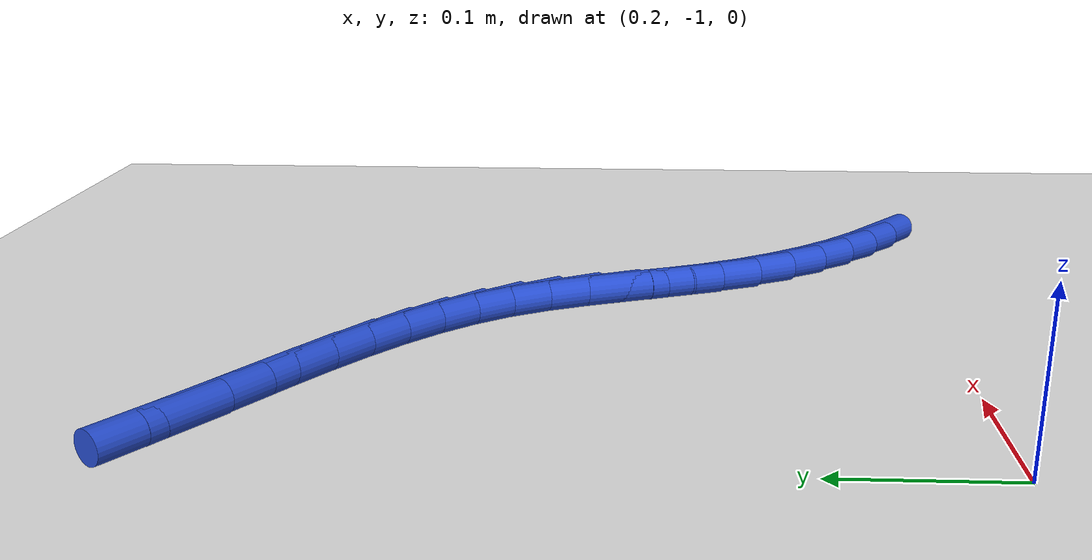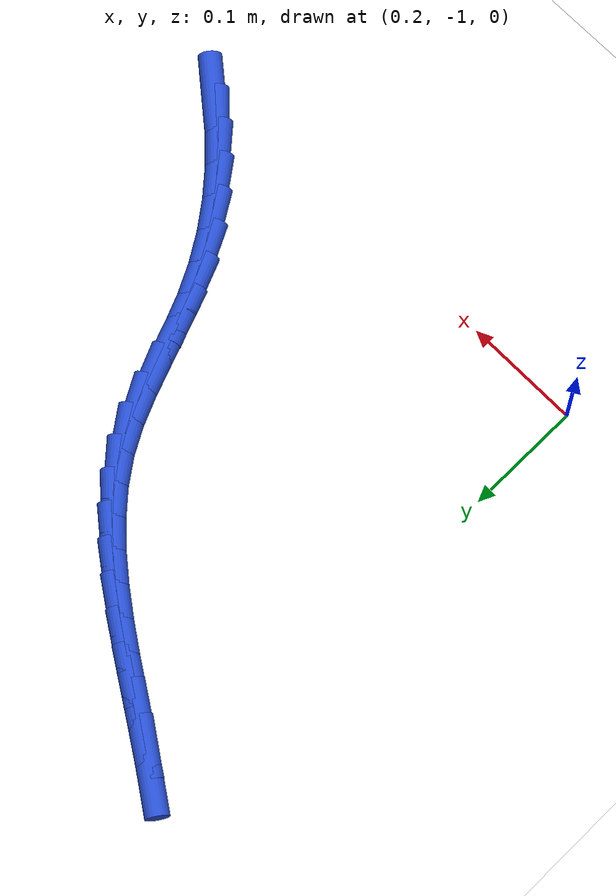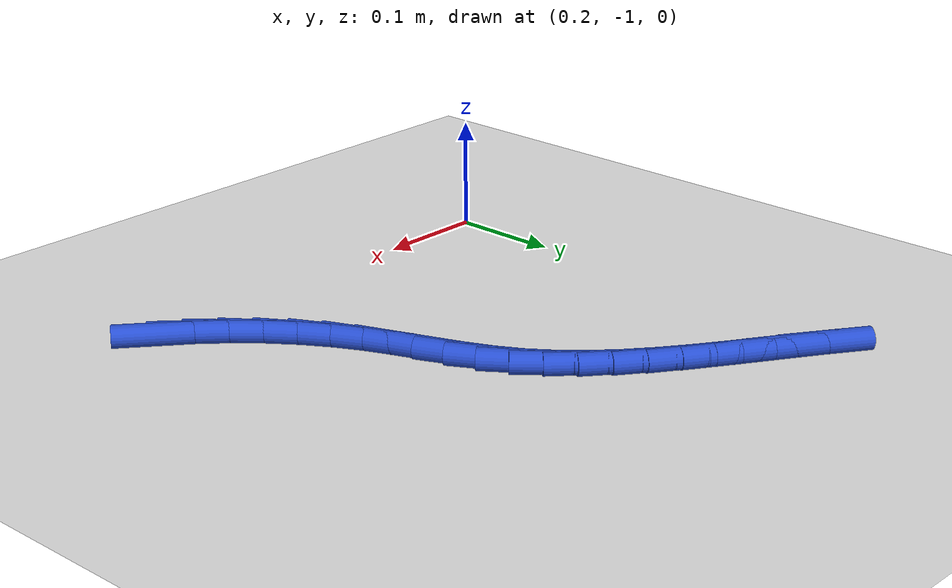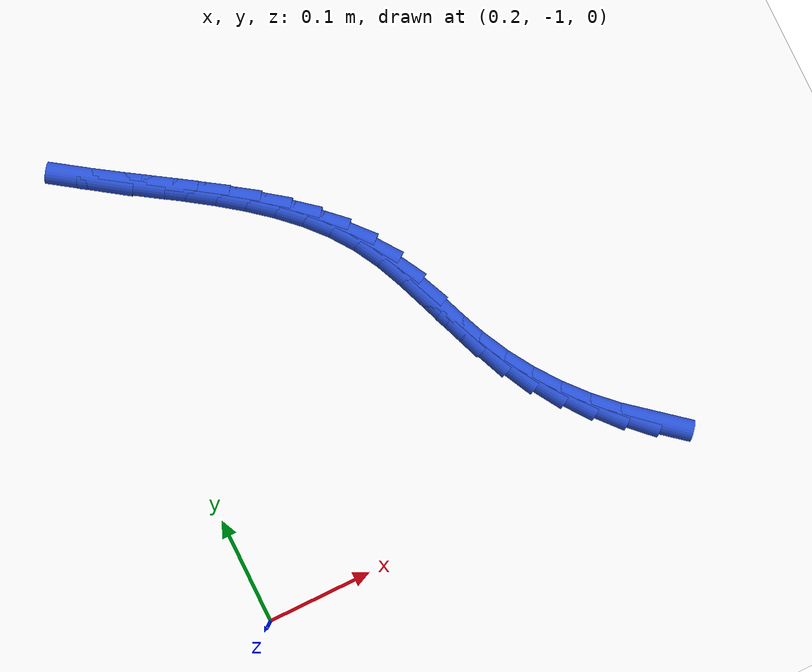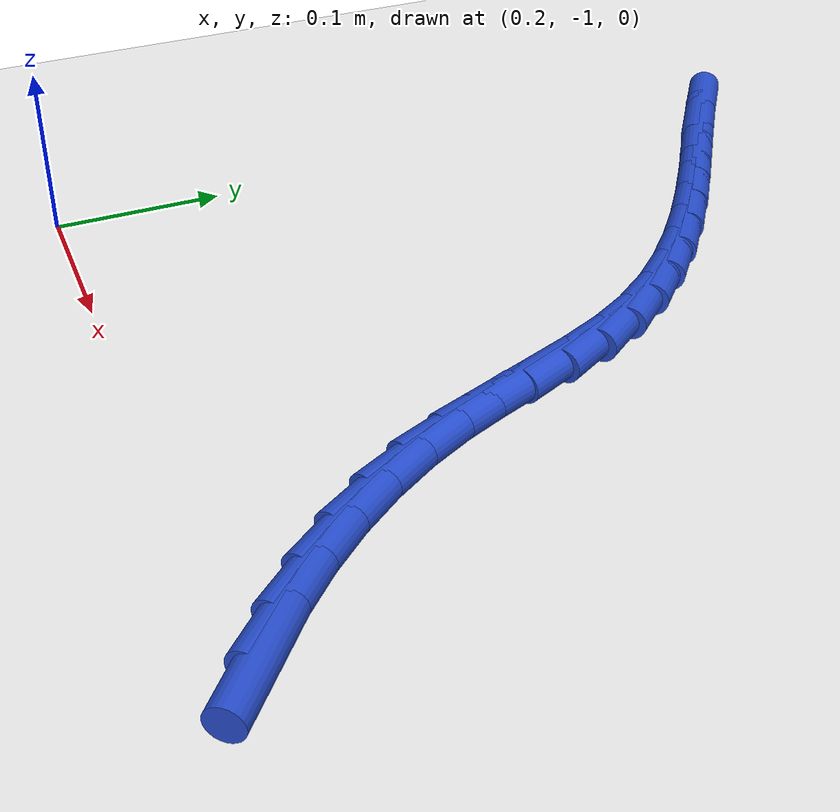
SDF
<sdf version="1.6">
 <world name="default">
  <model name="ground_plane">
   <static>1</static>
   <link name="link">
    <collision name="collision">
     <geometry><plane><normal>0 0 1</normal><size>100 100</size></plane></geometry>
     <surface><friction><ode><mu>100</mu><mu2>50</mu2></ode></friction></surface>
    </collision>
    <visual name="visual">
     <cast_shadows>0</cast_shadows>
     <geometry><plane><normal>0 0 1</normal><size>100 100</size></plane></geometry>
     <material>
      <script><uri>file://media/materials/scripts/gazebo.material</uri><name>Gazebo/WhiteGlow</name></script>
     </material>
    </visual>
   </link>
  </model>
  <model name="line">
   <link name="link_207">
    <pose>0.5857591074562696 -0.9875259805124075 0.01 0 1.57 -0.687936018560991</pose>
    <collision name="collision">
     <geometry><cylinder><radius>0.01</radius><length>0.08</length></cylinder></geometry>
    </collision>
    <visual name="visual">
     <material>
      <script><name>Gazebo/Blue</name><uri>file://media/materials/scripts/gazebo.material</uri></script>
     </material>
     <geometry><cylinder><radius>0.01</radius><length>0.08</length></cylinder></geometry>
    </visual>
   </link>
   <link name="link_208">
    <pose>0.5634534072632562 -0.969193548352954 0.01 0 1.57 -0.7690831950803583</pose>
    <collision name="collision">
     <geometry><cylinder><radius>0.01</radius><length>0.08</length></cylinder></geometry>
    </collision>
    <visual name="visual">
     <material>
      <script><name>Gazebo/Blue</name><uri>file://media/materials/scripts/gazebo.material</uri></script>
     </material>
     <geometry><cylinder><radius>0.01</radius><length>0.08</length></cylinder></geometry>
    </visual>
   </link>
   <link name="link_209">
    <pose>0.5426179669160879 -0.9490271116892757 0.01 0 1.57 -0.8492990741229081</pose>
    <collision name="collision">
     <geometry><cylinder><radius>0.01</radius><length>0.08</length></cylinder></geometry>
    </collision>
    <visual name="visual">
     <material>
      <script><name>Gazebo/Blue</name><uri>file://media/materials/scripts/gazebo.material</uri></script>
     </material>
     <geometry><cylinder><radius>0.01</radius><length>0.08</length></cylinder></geometry>
    </visual>
   </link>
   <link name="link_210">
    <pose>0.5234435801100519 -0.927231110503655 0.01 0 1.57 -0.929871763428374</pose>
    <collision name="collision">
     <geometry><cylinder><radius>0.01</radius><length>0.08</length></cylinder></geometry>
    </collision>
    <visual name="visual">
     <material>
      <script><name>Gazebo/Blue</name><uri>file://media/materials/scripts/gazebo.material</uri></script>
     </material>
     <geometry><cylinder><radius>0.01</radius><length>0.08</length></cylinder></geometry>
    </visual>
   </link>
   <link name="link_211">
    <pose>0.5061210405404372 -0.9040099847783777 0.01 0 1.57 -1.0120861842190325</pose>
    <collision name="collision">
     <geometry><cylinder><radius>0.01</radius><length>0.08</length></cylinder></geometry>
    </collision>
    <visual name="visual">
     <material>
      <script><name>Gazebo/Blue</name><uri>file://media/materials/scripts/gazebo.material</uri></script>
     </material>
     <geometry><cylinder><radius>0.01</radius><length>0.08</length></cylinder></geometry>
    </visual>
   </link>
   <link name="link_212">
    <pose>0.49084114190253225 -0.8795681744957281 0.01 0 1.57 -1.0970515512770902</pose>
    <collision name="collision">
     <geometry><cylinder><radius>0.01</radius><length>0.08</length></cylinder></geometry>
    </collision>
    <visual name="visual">
     <material>
      <script><name>Gazebo/Blue</name><uri>file://media/materials/scripts/gazebo.material</uri></script>
     </material>
     <geometry><cylinder><radius>0.01</radius><length>0.08</length></cylinder></geometry>
    </visual>
   </link>
   <link name="link_213">
    <pose>0.47778988544620415 -0.8541115439185473 0.01 0 1.57 -1.1708049866317725</pose>
    <collision name="collision">
     <geometry><cylinder><radius>0.01</radius><length>0.08</length></cylinder></geometry>
    </collision>
    <visual name="visual">
     <material>
      <script><name>Gazebo/Blue</name><uri>file://media/materials/scripts/gazebo.material</uri></script>
     </material>
     <geometry><cylinder><radius>0.01</radius><length>0.08</length></cylinder></geometry>
    </visual>
   </link>
   <link name="link_214">
    <pose>0.4667374846013331 -0.8279695264806982 0.01 0 1.57 -1.2067089240962305</pose>
    <collision name="collision">
     <geometry><cylinder><radius>0.01</radius><length>0.08</length></cylinder></geometry>
    </collision>
    <visual name="visual">
     <material>
      <script><name>Gazebo/Blue</name><uri>file://media/materials/scripts/gazebo.material</uri></script>
     </material>
     <geometry><cylinder><radius>0.01</radius><length>0.08</length></cylinder></geometry>
    </visual>
   </link>
   <link name="link_215">
    <pose>0.45672258154999706 -0.8016889733668494 0.01 0 1.57 -1.2012407458529641</pose>
    <collision name="collision">
     <geometry><cylinder><radius>0.01</radius><length>0.08</length></cylinder></geometry>
    </collision>
    <visual name="visual">
     <material>
      <script><name>Gazebo/Blue</name><uri>file://media/materials/scripts/gazebo.material</uri></script>
     </material>
     <geometry><cylinder><radius>0.01</radius><length>0.08</length></cylinder></geometry>
    </visual>
   </link>
   <link name="link_216">
    <pose>0.4467094772880478 -0.7758388294313572 0.01 0 1.57 -1.152497772683529</pose>
    <collision name="collision">
     <geometry><cylinder><radius>0.01</radius><length>0.08</length></cylinder></geometry>
    </collision>
    <visual name="visual">
     <material>
      <script><name>Gazebo/Blue</name><uri>file://media/materials/scripts/gazebo.material</uri></script>
     </material>
     <geometry><cylinder><radius>0.01</radius><length>0.08</length></cylinder></geometry>
    </visual>
   </link>
   <link name="link_217">
    <pose>0.4356624728113369 -0.7509880395285767 0.01 0 1.57 -1.0582157968981925</pose>
    <collision name="collision">
     <geometry><cylinder><radius>0.01</radius><length>0.08</length></cylinder></geometry>
    </collision>
    <visual name="visual">
     <material>
      <script><name>Gazebo/Blue</name><uri>file://media/materials/scripts/gazebo.material</uri></script>
     </material>
     <geometry><cylinder><radius>0.01</radius><length>0.08</length></cylinder></geometry>
    </visual>
   </link>
   <link name="link_218">
    <pose>0.4225566172645782 -0.7276991556602337 0.01 0 1.57 -0.9410847892112009</pose>
    <collision name="collision">
     <geometry><cylinder><radius>0.01</radius><length>0.08</length></cylinder></geometry>
    </collision>
    <visual name="visual">
     <material>
      <script><name>Gazebo/Blue</name><uri>file://media/materials/scripts/gazebo.material</uri></script>
     </material>
     <geometry><cylinder><radius>0.01</radius><length>0.08</length></cylinder></geometry>
    </visual>
   </link>
   <link name="link_219">
    <pose>0.40690254582361834 -0.7062161705475685 0.01 0 1.57 -0.8375522436632319</pose>
    <collision name="collision">
     <geometry><cylinder><radius>0.01</radius><length>0.08</length></cylinder></geometry>
    </collision>
    <visual name="visual">
     <material>
      <script><name>Gazebo/Blue</name><uri>file://media/materials/scripts/gazebo.material</uri></script>
     </material>
     <geometry><cylinder><radius>0.01</radius><length>0.08</length></cylinder></geometry>
    </visual>
   </link>
   <link name="link_220">
    <pose>0.3889836482453589 -0.6863234530063754 0.01 0 1.57 -0.7519090267180177</pose>
    <collision name="collision">
     <geometry><cylinder><radius>0.01</radius><length>0.08</length></cylinder></geometry>
    </collision>
    <visual name="visual">
     <material>
      <script><name>Gazebo/Blue</name><uri>file://media/materials/scripts/gazebo.material</uri></script>
     </material>
     <geometry><cylinder><radius>0.01</radius><length>0.08</length></cylinder></geometry>
    </visual>
   </link>
   <link name="link_221">
    <pose>0.3691435036272248 -0.6677695720520513 0.01 0 1.57 -0.68412795057625</pose>
    <collision name="collision">
     <geometry><cylinder><radius>0.01</radius><length>0.08</length></cylinder></geometry>
    </collision>
    <visual name="visual">
     <material>
      <script><name>Gazebo/Blue</name><uri>file://media/materials/scripts/gazebo.material</uri></script>
     </material>
     <geometry><cylinder><radius>0.01</radius><length>0.08</length></cylinder></geometry>
    </visual>
   </link>
   <link name="link_222">
    <pose>0.3477256910666417 -0.6503030966999939 0.01 0 1.57 -0.6332971185942214</pose>
    <collision name="collision">
     <geometry><cylinder><radius>0.01</radius><length>0.08</length></cylinder></geometry>
    </collision>
    <visual name="visual">
     <material>
      <script><name>Gazebo/Blue</name><uri>file://media/materials/scripts/gazebo.material</uri></script>
     </material>
     <geometry><cylinder><radius>0.01</radius><length>0.08</length></cylinder></geometry>
    </visual>
   </link>
   <link name="link_223">
    <pose>0.32507378966103456 -0.6336725959655995 0.01 0 1.57 -0.5982539747161888</pose>
    <collision name="collision">
     <geometry><cylinder><radius>0.01</radius><length>0.08</length></cylinder></geometry>
    </collision>
    <visual name="visual">
     <material>
      <script><name>Gazebo/Blue</name><uri>file://media/materials/scripts/gazebo.material</uri></script>
     </material>
     <geometry><cylinder><radius>0.01</radius><length>0.08</length></cylinder></geometry>
    </visual>
   </link>
   <link name="link_224">
    <pose>0.30153137850782885 -0.6176266388642658 0.01 0 1.57 -0.577971953471831</pose>
    <collision name="collision">
     <geometry><cylinder><radius>0.01</radius><length>0.08</length></cylinder></geometry>
    </collision>
    <visual name="visual">
     <material>
      <script><name>Gazebo/Blue</name><uri>file://media/materials/scripts/gazebo.material</uri></script>
     </material>
     <geometry><cylinder><radius>0.01</radius><length>0.08</length></cylinder></geometry>
    </visual>
   </link>
   <link name="link_225">
    <pose>0.2774420367044495 -0.6019137944113891 0.01 0 1.57 -0.5717577127830366</pose>
    <collision name="collision">
     <geometry><cylinder><radius>0.01</radius><length>0.08</length></cylinder></geometry>
    </collision>
    <visual name="visual">
     <material>
      <script><name>Gazebo/Blue</name><uri>file://media/materials/scripts/gazebo.material</uri></script>
     </material>
     <geometry><cylinder><radius>0.01</radius><length>0.08</length></cylinder></geometry>
    </visual>
   </link>
   <link name="link_226">
    <pose>0.2531493433483219 -0.586282631622367 0.01 0 1.57 -0.5793328030772019</pose>
    <collision name="collision">
     <geometry><cylinder><radius>0.01</radius><length>0.08</length></cylinder></geometry>
    </collision>
    <visual name="visual">
     <material>
      <script><name>Gazebo/Blue</name><uri>file://media/materials/scripts/gazebo.material</uri></script>
     </material>
     <geometry><cylinder><radius>0.01</radius><length>0.08</length></cylinder></geometry>
    </visual>
   </link>
   <link name="link_227">
    <pose>0.22899687753687134 -0.5704817195125965 0.01 0 1.57 -0.6008482654412005</pose>
    <collision name="collision">
     <geometry><cylinder><radius>0.01</radius><length>0.08</length></cylinder></geometry>
    </collision>
    <visual name="visual">
     <material>
      <script><name>Gazebo/Blue</name><uri>file://media/materials/scripts/gazebo.material</uri></script>
     </material>
     <geometry><cylinder><radius>0.01</radius><length>0.08</length></cylinder></geometry>
    </visual>
   </link>
  </model>
 </world>
</sdf>
